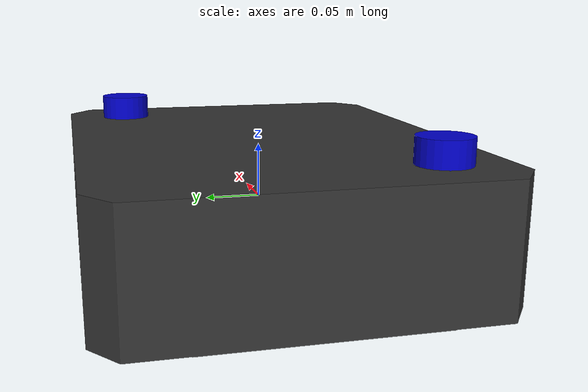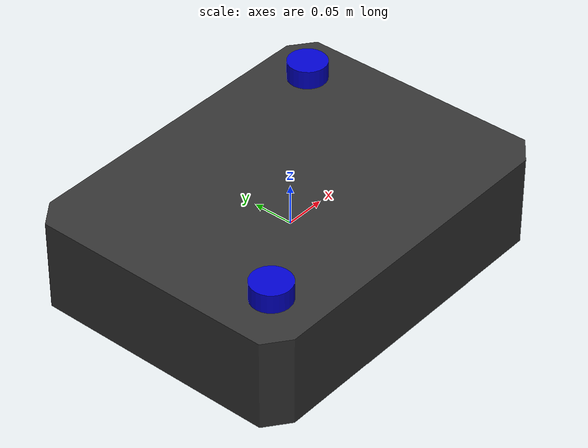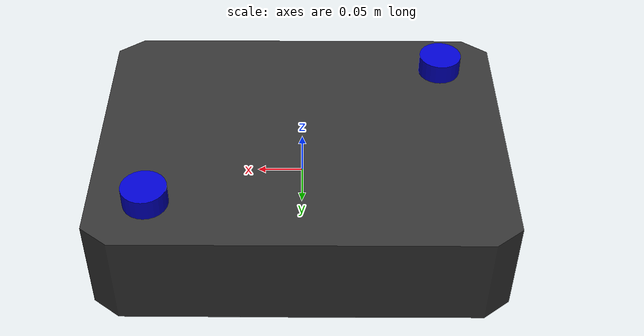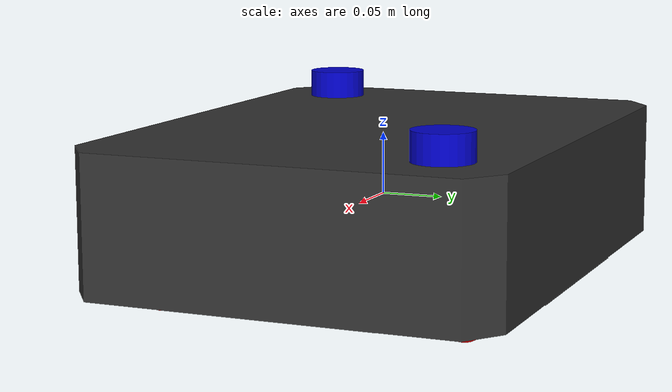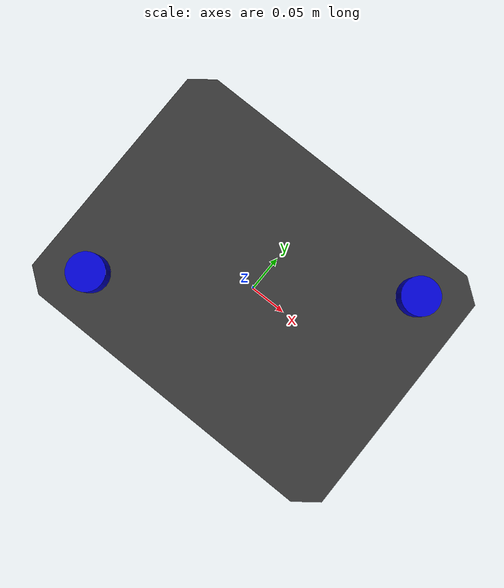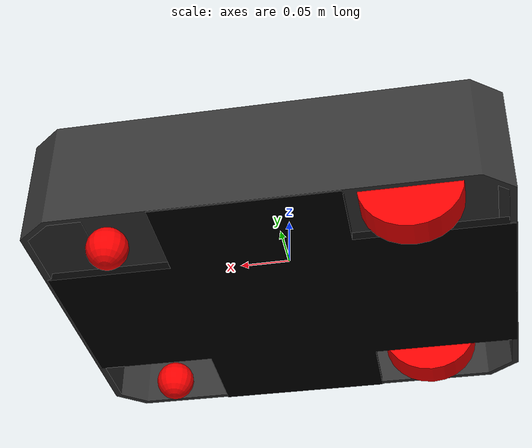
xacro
<?xml version="1.0"?>
<robot name="mini_unix" xmlns:xacro="http://ros.org/wiki/xacro">

  <xacro:include filename="$(find sdv_test)/urdf/common_properties.xacro"/>
  <xacro:include filename="$(find sdv_test)/urdf/fresh.gazebo.xacro"/>

  <xacro:property name="scale" value="0.4"/>

  <joint name="base_to_footprint" type="fixed">
    <parent link="base_footprint"/>
    <child link="base_link"/>
    <origin xyz="0 0 0" rpy="0 0 0"/>
  </joint>

  <link name="base_footprint"/>

  <link name="base_link">
    <visual>
      <origin xyz="0 0 0" rpy="0 0 0"/>
      <geometry>
        <mesh filename="package://sdv_test/urdf/base3.stl" scale="${scale * 1} ${scale * 1} ${scale * 1}"/>
      </geometry>
      <material name="base"/>
    </visual>

    <collision>
      <origin xyz="0 0 0" rpy="0 0 3.14"/>
      <geometry>
        <box size="${1.12 * scale} ${scale * 0.857} ${scale * 0.28}"/>
      </geometry>
    </collision>

    <inertial>
      <origin xyz="0 0 0" rpy="0 0 0"/>
      <mass value="${scale * 20}"/>
      <inertia ixx="${scale * 0.067737}" ixy="0" ixz="0"
               iyy="${scale * 0.108202}" iyz="0"
               izz="${scale * 0.162873}"/>
    </inertial>
  </link>

  <joint name="bottom_to_base" type="fixed">
    <parent link="base_link"/>
    <child link="bottom_base"/>
    <origin xyz="0 0 ${scale * -0.14}"/>
  </joint>

  <link name="bottom_base">
    <visual>
      <origin xyz="0 0 0" rpy="0 0 3.1415"/>
      <geometry>
        <mesh filename="package://sdv_test/urdf/basebottom.stl" scale="${scale * 1} ${scale * 1} ${scale * 1}"/>
      </geometry>
      <material name="black"/>
    </visual>

    <collision>
      <origin xyz="0 0 0" rpy="0 0 0"/>
      <geometry>
        <box size="${scale * 1.105} ${scale * 0.857} ${scale * 0.01}"/>
      </geometry>
    </collision>

    <inertial>
      <origin xyz="0 0 0" rpy="0 0 0"/>
    <mass value="${scale * 6}"/>
    <inertia ixx="${scale * 0.067737}" ixy="0" ixz="0"
             iyy="${scale * 0.108202}" iyz="0.0"
             izz="${scale * 0.162873}"/>
    </inertial>
  </link>

  <joint name="left_back_joint" type="continuous">
    <parent link="base_footprint"/>
    <child link="left_back_wheel"/>
    <origin rpy="0 0 0" xyz="${scale * -0.330} ${scale * 0.310} ${scale * -0.07}"/>
    <axis xyz="0 1 0"/>
  </joint>

  <link name="left_back_wheel">
    <visual>
      <origin rpy="1.57075 0 0" xyz="0 0 0"/>
      <geometry>
        <cylinder length="${scale * 0.07}" radius="${scale * 0.12}"/>
      </geometry>
      <material name="red"/>
    </visual>

    <collision>
      <origin xyz="0 0 0" rpy="1.57075 0 0"/>
      <geometry>
        <cylinder length="${scale * 0.07}" radius="${scale * 0.12}"/>
      </geometry>
    </collision>

    <inertial>
      <origin rpy="1.57075 0 0"/>
      <mass value="${scale * 1}"/>
      <inertia
        ixx="${scale * 0.0040083}" ixy="0" ixz="0"
        iyy="${scale * 0.0040083}" iyz="0.0"
        izz="${scale * 0.0072}"/>
    </inertial>
  </link>

  <joint name="right_back_joint" type="continuous">
    <parent link="base_footprint"/>
    <child link="right_back_wheel"/>
    <origin rpy="0 0 0" xyz="${scale * -0.330} ${scale * -0.310} ${scale * -0.07}"/>
    <axis xyz="0 1 0"/>
  </joint>

  <link name="right_back_wheel">
    <visual>
      <origin xyz="0 0 0" rpy="1.57075 0 0"/>
      <geometry>
        <cylinder length="${scale * 0.07}" radius="${scale * 0.12}"/>
      </geometry>
      <material name="red"/>
    </visual>

    <collision>
      <origin xyz="0 0 0" rpy="1.57075 0 0"/>
      <geometry>
        <cylinder length="${scale * 0.07}" radius="${scale * 0.12}"/>
      </geometry>
    </collision>

    <inertial>
      <origin rpy="1.57075 0 0"/>
      <mass value="${scale * 1}"/>
      <inertia
        ixx="${scale * 0.0040083}" ixy="0" ixz="0"
        iyy="${scale * 0.0040083}" iyz="0.0"
        izz="${scale * 0.0072}"/>
    </inertial>
  </link>

  <joint name="left_castor_joint" type="fixed">
    <parent link="base_link"/>
    <child link="left_castor_wheel"/>
    <origin rpy="0 0 0" xyz="${scale * 0.370} ${scale * -0.310} ${scale * -0.14}"/>
  </joint>

  <link name="left_castor_wheel">
    <visual>
      <origin xyz="0 0 0" rpy="0 0 0"/>
      <geometry>
        <sphere radius="${scale * 0.05}"/>
      </geometry>
      <material name="red"/>
    </visual>

    <collision>
      <origin xyz="0 0 0" rpy="0 0 0"/>
      <geometry>
        <sphere radius="${scale * 0.05}"/>
      </geometry>
    </collision>

    <inertial>
      <origin xyz="0 0 0" />
      <mass value="${scale * 0.8}"/>
      <inertia
        ixx="${scale * 0.0001}" ixy="0" ixz="0"
        iyy="${scale * 0.0001}" iyz="0.0"
        izz="${scale * 0.0001}"/>
    </inertial>
  </link>

  <joint name="right_castor_joint" type="fixed">
    <parent link="base_link"/>
    <child link="right_castor_wheel"/>
    <origin rpy="0 0 0" xyz="${scale * 0.370} ${scale * 0.310} ${scale * -0.14}"/>
  </joint>

  <link name="right_castor_wheel">
    <visual>
      <origin rpy="0 0 0" xyz="0 0 0"/>
      <geometry>
        <sphere radius="${scale * 0.05}"/>
      </geometry>
      <material name="red"/>
    </visual>

    <collision>
      <origin xyz="0 0 0" rpy="0 0 0"/>
      <geometry>
        <sphere radius="${scale * 0.05}"/>
      </geometry>
    </collision>

    <inertial>
      <mass value="${scale * 0.8}"/>
      <origin rpy="0 0 0" xyz="0 0 0"/>
      <inertia
        ixx="${scale * 0.0001}" ixy="0" ixz="0"
        iyy="${scale * 0.0001}" iyz="0.0"
        izz="${scale * 0.0001}"/>
    </inertial>
  </link>

  <joint name="laser_rear_joint" type="fixed">
    <parent link="base_footprint"/>
    <child link="laser_rear_link"/>
    <origin xyz="${scale * -0.4025} ${scale * -0.2785} ${scale * 0.17}" rpy="0 0 3.14159265"/>
    <axis xyz="0 0 1"/>
  </joint>

  <link name="laser_rear_link">
    <visual>
      <origin xyz="0 0 0" rpy="0 0 0" />
      <geometry>
        <cylinder length="${scale * 0.06}" radius="${scale * 0.06}"/>
      </geometry>
      <material name="blue"/>
    </visual>
  </link>

  <joint name="laser_front_joint" type="fixed">
    <parent link="base_footprint"/>
    <child link="laser_front_link"/>
    <origin xyz="${scale * 0.4025} ${scale * 0.2785} ${scale * 0.17}" rpy="0 0 0"/>
    <axis xyz="0 0 1"/>
  </joint>

  <link name="laser_front_link">
    <visual>
      <origin xyz="0 0 0" rpy="0 0 0" />
      <geometry>
        <cylinder length="${scale * 0.06}" radius="${scale * 0.06}"/>
      </geometry>
      <material name="blue"/>
    </visual>
  </link>

  <gazebo>
    <plugin name="gazebo_ros_control" filename="libgazebo_ros_control.so">
      <robotSimType>gazebo_ros_control/DefaultRobotHWSim</robotSimType>
    </plugin>
  </gazebo>
</robot>

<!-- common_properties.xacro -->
<robot name="xacro_properties" xmlns:xacro="http://ros.org/wiki/xacro">

   <material name="red">
    <color rgba="1 0 0 1"/>
  </material>

  <material name="blue">
    <color rgba="0 0 0.8 1"/>
  </material>

  <material name="black">
    <color rgba="0 0 0 1"/>
  </material>

  <material name="white">
    <color rgba="1 1 1 1"/>
  </material>

  <material name="base">
    <color rgba="0.2 0.2 0.2 1"/>
  </material>

  <material name="gray">
    <color rgba="0.4 0.4 0.4 1"/>
  </material>

</robot>
